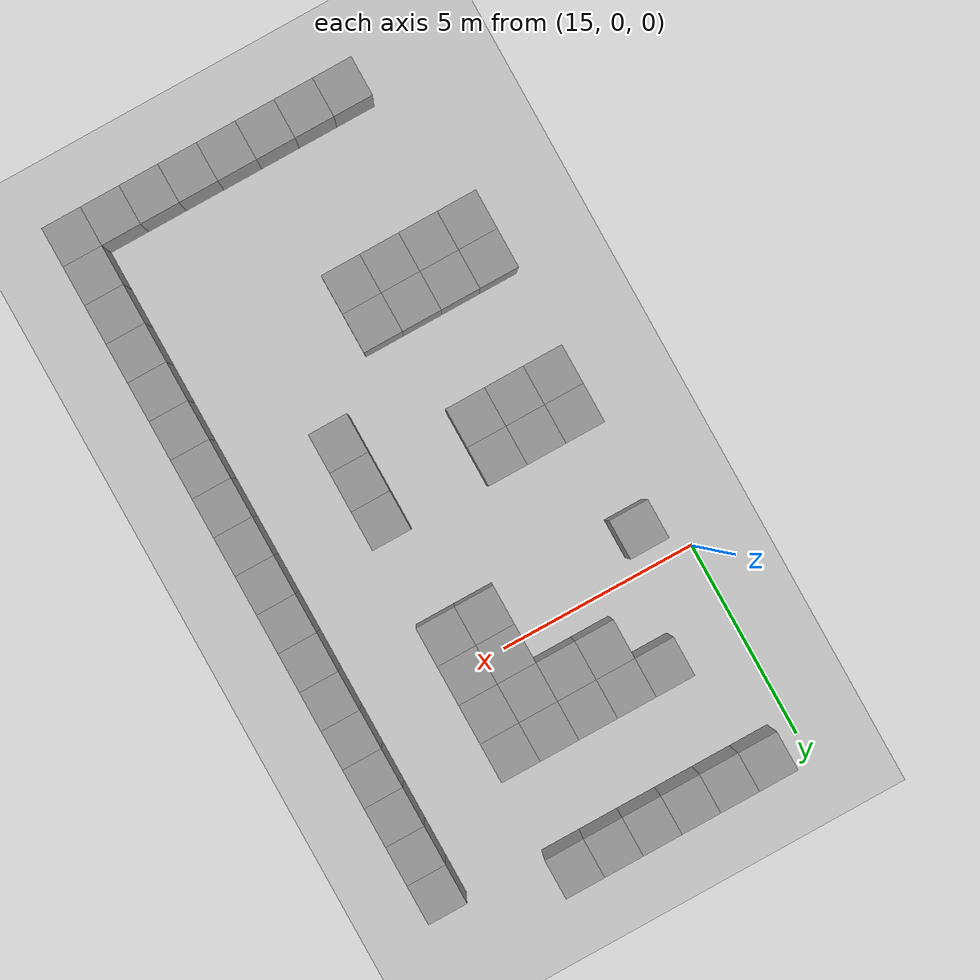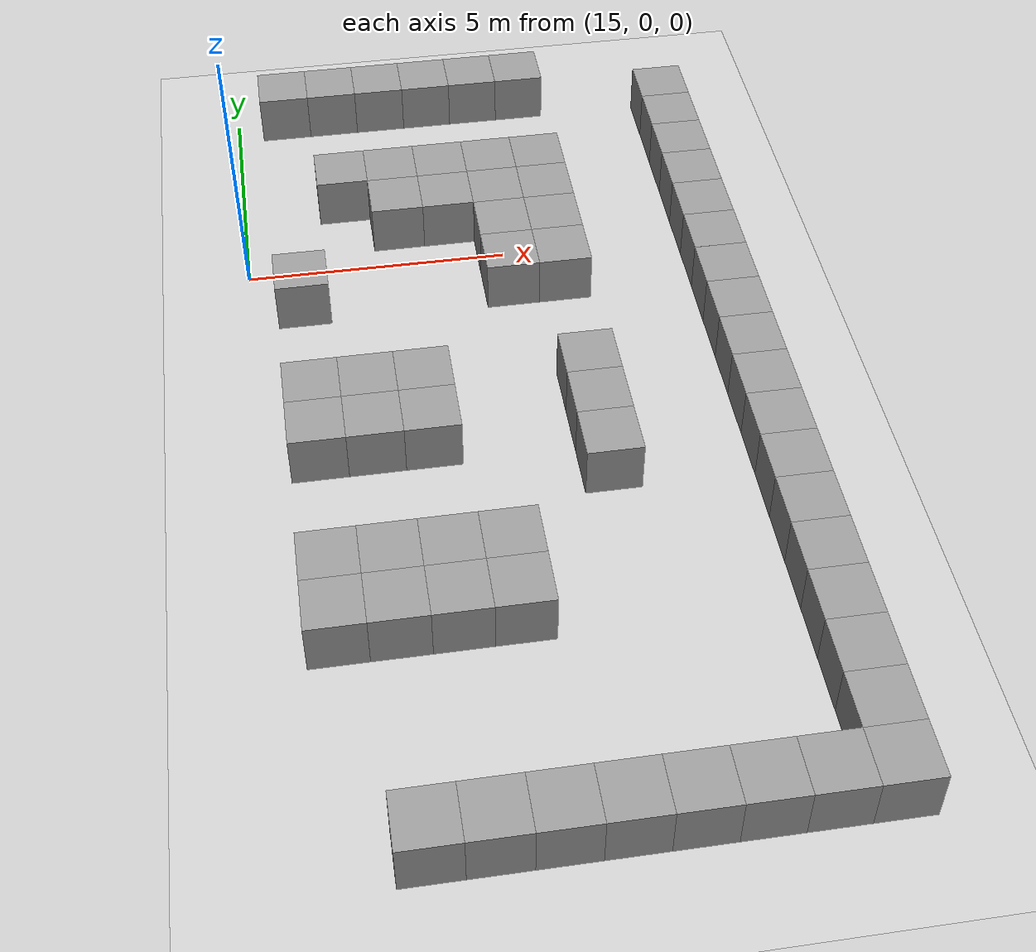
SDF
<sdf version="1.4">
 <world name="default">
  <model name="ground_plane">
   <static>1</static>
   <link name="link">
    <collision name="collision">
     <geometry><plane><normal>0 0 1</normal><size>100 100</size></plane></geometry>
     <surface><friction><ode><mu>100</mu><mu2>50</mu2></ode></friction></surface>
    </collision>
    <visual name="visual">
     <cast_shadows>0</cast_shadows>
     <geometry><plane><normal>0 0 1</normal><size>100 100</size></plane></geometry>
     <material>
      <script><uri>file://media/materials/scripts/gazebo.material</uri><name>Gazebo/Grey</name></script>
     </material>
    </visual>
    <velocity_decay><linear>0</linear><angular>0</angular></velocity_decay>
   </link>
  </model>
  <model name="unit_box_182">
   <pose>24.0018 -0.999661 0.5 0 -0 7.7e-05</pose>
   <static>1</static>
   <link name="link">
    <inertial>
     <mass>1</mass>
     <inertia><ixx>1</ixx><ixy>0</ixy><ixz>0</ixz><iyy>1</iyy><iyz>0</iyz><izz>1</izz></inertia>
    </inertial>
    <collision name="collision"><geometry><box><size>1 1 1</size></box></geometry></collision>
    <visual name="visual">
     <geometry><box><size>1 1 1</size></box></geometry>
     <material>
      <script><uri>file://media/materials/scripts/gazebo.material</uri><name>Gazebo/Grey</name></script>
     </material>
    </visual>
    <velocity_decay><linear>0</linear><angular>0</angular></velocity_decay>
   </link>
   <static>1</static>
  </model>
  <model name="unit_box_195">
   <pose>24.0001 4.00041 0.5 0 -0 5.9e-05</pose>
   <static>1</static>
   <link name="link">
    <inertial>
     <mass>1</mass>
     <inertia><ixx>1</ixx><ixy>0</ixy><ixz>0</ixz><iyy>1</iyy><iyz>0</iyz><izz>1</izz></inertia>
    </inertial>
    <collision name="collision"><geometry><box><size>1 1 1</size></box></geometry></collision>
    <visual name="visual">
     <geometry><box><size>1 1 1</size></box></geometry>
     <material>
      <script><uri>file://media/materials/scripts/gazebo.material</uri><name>Gazebo/Grey</name></script>
     </material>
    </visual>
    <velocity_decay><linear>0</linear><angular>0</angular></velocity_decay>
   </link>
   <static>1</static>
  </model>
  <model name="unit_box_196">
   <pose>24 3.00041 0.5 0 -0 5.5e-05</pose>
   <static>1</static>
   <link name="link">
    <inertial>
     <mass>1</mass>
     <inertia><ixx>1</ixx><ixy>0</ixy><ixz>0</ixz><iyy>1</iyy><iyz>0</iyz><izz>1</izz></inertia>
    </inertial>
    <collision name="collision"><geometry><box><size>1 1 1</size></box></geometry></collision>
    <visual name="visual">
     <geometry><box><size>1 1 1</size></box></geometry>
     <material>
      <script><uri>file://media/materials/scripts/gazebo.material</uri><name>Gazebo/Grey</name></script>
     </material>
    </visual>
    <velocity_decay><linear>0</linear><angular>0</angular></velocity_decay>
   </link>
   <static>1</static>
  </model>
  <model name="unit_box_197">
   <pose>23.9999 2.00038 0.5 0 -0 6.3e-05</pose>
   <static>1</static>
   <link name="link">
    <inertial>
     <mass>1</mass>
     <inertia><ixx>1</ixx><ixy>0</ixy><ixz>0</ixz><iyy>1</iyy><iyz>0</iyz><izz>1</izz></inertia>
    </inertial>
    <collision name="collision"><geometry><box><size>1 1 1</size></box></geometry></collision>
    <visual name="visual">
     <geometry><box><size>1 1 1</size></box></geometry>
     <material>
      <script><uri>file://media/materials/scripts/gazebo.material</uri><name>Gazebo/Grey</name></script>
     </material>
    </visual>
    <velocity_decay><linear>0</linear><angular>0</angular></velocity_decay>
   </link>
   <static>1</static>
  </model>
  <model name="unit_box_198">
   <pose>23.9999 1.00035 0.5 0 -0 7.1e-05</pose>
   <static>1</static>
   <link name="link">
    <inertial>
     <mass>1</mass>
     <inertia><ixx>1</ixx><ixy>0</ixy><ixz>0</ixz><iyy>1</iyy><iyz>0</iyz><izz>1</izz></inertia>
    </inertial>
    <collision name="collision"><geometry><box><size>1 1 1</size></box></geometry></collision>
    <visual name="visual">
     <geometry><box><size>1 1 1</size></box></geometry>
     <material>
      <script><uri>file://media/materials/scripts/gazebo.material</uri><name>Gazebo/Grey</name></script>
     </material>
    </visual>
    <velocity_decay><linear>0</linear><angular>0</angular></velocity_decay>
   </link>
   <static>1</static>
  </model>
  <model name="unit_box_199">
   <pose>23.9997 0.000344 0.5 0 -0 7.4e-05</pose>
   <static>1</static>
   <link name="link">
    <inertial>
     <mass>1</mass>
     <inertia><ixx>1</ixx><ixy>0</ixy><ixz>0</ixz><iyy>1</iyy><iyz>0</iyz><izz>1</izz></inertia>
    </inertial>
    <collision name="collision"><geometry><box><size>1 1 1</size></box></geometry></collision>
    <visual name="visual">
     <geometry><box><size>1 1 1</size></box></geometry>
     <material>
      <script><uri>file://media/materials/scripts/gazebo.material</uri><name>Gazebo/Grey</name></script>
     </material>
    </visual>
    <velocity_decay><linear>0</linear><angular>0</angular></velocity_decay>
   </link>
   <static>1</static>
  </model>
  <model name="unit_box_204">
   <pose>24 -1.99999 0.5 0 -0 1e-06</pose>
   <static>1</static>
   <link name="link">
    <inertial>
     <mass>1</mass>
     <inertia><ixx>1</ixx><ixy>0</ixy><ixz>0</ixz><iyy>1</iyy><iyz>0</iyz><izz>1</izz></inertia>
    </inertial>
    <collision name="collision"><geometry><box><size>1 1 1</size></box></geometry></collision>
    <visual name="visual">
     <geometry><box><size>1 1 1</size></box></geometry>
     <material>
      <script><uri>file://media/materials/scripts/gazebo.material</uri><name>Gazebo/Grey</name></script>
     </material>
    </visual>
    <velocity_decay><linear>0</linear><angular>0</angular></velocity_decay>
   </link>
   <static>1</static>
  </model>
  <model name="unit_box_205">
   <pose>24 -2.99999 0.5 0 -0 1e-06</pose>
   <static>1</static>
   <link name="link">
    <inertial>
     <mass>1</mass>
     <inertia><ixx>1</ixx><ixy>0</ixy><ixz>0</ixz><iyy>1</iyy><iyz>0</iyz><izz>1</izz></inertia>
    </inertial>
    <collision name="collision"><geometry><box><size>1 1 1</size></box></geometry></collision>
    <visual name="visual">
     <geometry><box><size>1 1 1</size></box></geometry>
     <material>
      <script><uri>file://media/materials/scripts/gazebo.material</uri><name>Gazebo/Grey</name></script>
     </material>
    </visual>
    <velocity_decay><linear>0</linear><angular>0</angular></velocity_decay>
   </link>
   <static>1</static>
  </model>
  <model name="unit_box_206">
   <pose>24 -3.99999 0.5 0 0 -1e-06</pose>
   <static>1</static>
   <link name="link">
    <inertial>
     <mass>1</mass>
     <inertia><ixx>1</ixx><ixy>0</ixy><ixz>0</ixz><iyy>1</iyy><iyz>0</iyz><izz>1</izz></inertia>
    </inertial>
    <collision name="collision"><geometry><box><size>1 1 1</size></box></geometry></collision>
    <visual name="visual">
     <geometry><box><size>1 1 1</size></box></geometry>
     <material>
      <script><uri>file://media/materials/scripts/gazebo.material</uri><name>Gazebo/Grey</name></script>
     </material>
    </visual>
    <velocity_decay><linear>0</linear><angular>0</angular></velocity_decay>
   </link>
   <static>1</static>
  </model>
  <model name="unit_box_207">
   <pose>24 -4.99999 0.5 0 0 -1e-06</pose>
   <static>1</static>
   <link name="link">
    <inertial>
     <mass>1</mass>
     <inertia><ixx>1</ixx><ixy>0</ixy><ixz>0</ixz><iyy>1</iyy><iyz>0</iyz><izz>1</izz></inertia>
    </inertial>
    <collision name="collision"><geometry><box><size>1 1 1</size></box></geometry></collision>
    <visual name="visual">
     <geometry><box><size>1 1 1</size></box></geometry>
     <material>
      <script><uri>file://media/materials/scripts/gazebo.material</uri><name>Gazebo/Grey</name></script>
     </material>
    </visual>
    <velocity_decay><linear>0</linear><angular>0</angular></velocity_decay>
   </link>
   <static>1</static>
  </model>
  <model name="unit_box_208">
   <pose>24 -6 0.5 0 0 -2e-06</pose>
   <static>1</static>
   <link name="link">
    <inertial>
     <mass>1</mass>
     <inertia><ixx>1</ixx><ixy>0</ixy><ixz>0</ixz><iyy>1</iyy><iyz>0</iyz><izz>1</izz></inertia>
    </inertial>
    <collision name="collision"><geometry><box><size>1 1 1</size></box></geometry></collision>
    <visual name="visual">
     <geometry><box><size>1 1 1</size></box></geometry>
     <material>
      <script><uri>file://media/materials/scripts/gazebo.material</uri><name>Gazebo/Grey</name></script>
     </material>
    </visual>
    <velocity_decay><linear>0</linear><angular>0</angular></velocity_decay>
   </link>
   <static>1</static>
  </model>
  <model name="unit_box_215">
   <pose>24 -7 0.5 0 0 -2e-06</pose>
   <static>1</static>
   <link name="link">
    <inertial>
     <mass>1</mass>
     <inertia><ixx>1</ixx><ixy>0</ixy><ixz>0</ixz><iyy>1</iyy><iyz>0</iyz><izz>1</izz></inertia>
    </inertial>
    <collision name="collision"><geometry><box><size>1 1 1</size></box></geometry></collision>
    <visual name="visual">
     <geometry><box><size>1 1 1</size></box></geometry>
     <material>
      <script><uri>file://media/materials/scripts/gazebo.material</uri><name>Gazebo/Grey</name></script>
     </material>
    </visual>
    <velocity_decay><linear>0</linear><angular>0</angular></velocity_decay>
   </link>
   <static>1</static>
  </model>
  <model name="unit_box_216">
   <pose>24 -8 0.5 0 0 -3e-06</pose>
   <static>1</static>
   <link name="link">
    <inertial>
     <mass>1</mass>
     <inertia><ixx>1</ixx><ixy>0</ixy><ixz>0</ixz><iyy>1</iyy><iyz>0</iyz><izz>1</izz></inertia>
    </inertial>
    <collision name="collision"><geometry><box><size>1 1 1</size></box></geometry></collision>
    <visual name="visual">
     <geometry><box><size>1 1 1</size></box></geometry>
     <material>
      <script><uri>file://media/materials/scripts/gazebo.material</uri><name>Gazebo/Grey</name></script>
     </material>
    </visual>
    <velocity_decay><linear>0</linear><angular>0</angular></velocity_decay>
   </link>
   <static>1</static>
  </model>
  <model name="unit_box_274">
   <pose>24 -9 0.5 0 0 -6e-06</pose>
   <static>1</static>
   <link name="link">
    <inertial>
     <mass>1</mass>
     <inertia><ixx>1</ixx><ixy>0</ixy><ixz>0</ixz><iyy>1</iyy><iyz>0</iyz><izz>1</izz></inertia>
    </inertial>
    <collision name="collision"><geometry><box><size>1 1 1</size></box></geometry></collision>
    <visual name="visual">
     <geometry><box><size>1 1 1</size></box></geometry>
     <material>
      <script><uri>file://media/materials/scripts/gazebo.material</uri><name>Gazebo/Grey</name></script>
     </material>
    </visual>
    <velocity_decay><linear>0</linear><angular>0</angular></velocity_decay>
   </link>
   <static>1</static>
  </model>
  <model name="unit_box_275">
   <pose>24 -10 0.5 0 0 -6e-06</pose>
   <static>1</static>
   <link name="link">
    <inertial>
     <mass>1</mass>
     <inertia><ixx>1</ixx><ixy>0</ixy><ixz>0</ixz><iyy>1</iyy><iyz>0</iyz><izz>1</izz></inertia>
    </inertial>
    <collision name="collision"><geometry><box><size>1 1 1</size></box></geometry></collision>
    <visual name="visual">
     <geometry><box><size>1 1 1</size></box></geometry>
     <material>
      <script><uri>file://media/materials/scripts/gazebo.material</uri><name>Gazebo/Grey</name></script>
     </material>
    </visual>
    <velocity_decay><linear>0</linear><angular>0</angular></velocity_decay>
   </link>
   <static>1</static>
  </model>
  <model name="unit_box_276">
   <pose>24 -11 0.5 0 0 -4e-06</pose>
   <static>1</static>
   <link name="link">
    <inertial>
     <mass>1</mass>
     <inertia><ixx>1</ixx><ixy>0</ixy><ixz>0</ixz><iyy>1</iyy><iyz>0</iyz><izz>1</izz></inertia>
    </inertial>
    <collision name="collision"><geometry><box><size>1 1 1</size></box></geometry></collision>
    <visual name="visual">
     <geometry><box><size>1 1 1</size></box></geometry>
     <material>
      <script><uri>file://media/materials/scripts/gazebo.material</uri><name>Gazebo/Grey</name></script>
     </material>
    </visual>
    <velocity_decay><linear>0</linear><angular>0</angular></velocity_decay>
   </link>
   <static>1</static>
  </model>
  <model name="unit_box_277">
   <pose>24 -12 0.5 0 0 -4e-06</pose>
   <static>1</static>
   <link name="link">
    <inertial>
     <mass>1</mass>
     <inertia><ixx>1</ixx><ixy>0</ixy><ixz>0</ixz><iyy>1</iyy><iyz>0</iyz><izz>1</izz></inertia>
    </inertial>
    <collision name="collision"><geometry><box><size>1 1 1</size></box></geometry></collision>
    <visual name="visual">
     <geometry><box><size>1 1 1</size></box></geometry>
     <material>
      <script><uri>file://media/materials/scripts/gazebo.material</uri><name>Gazebo/Grey</name></script>
     </material>
    </visual>
    <velocity_decay><linear>0</linear><angular>0</angular></velocity_decay>
   </link>
   <static>1</static>
  </model>
  <model name="unit_box_280">
   <pose>17 -13 0.5 -1e-06 1.61559e-27 -1.1e-05</pose>
   <static>1</static>
   <link name="link">
    <inertial>
     <mass>1</mass>
     <inertia><ixx>1</ixx><ixy>0</ixy><ixz>0</ixz><iyy>1</iyy><iyz>0</iyz><izz>1</izz></inertia>
    </inertial>
    <collision name="collision"><geometry><box><size>1 1 1</size></box></geometry></collision>
    <visual name="visual">
     <geometry><box><size>1 1 1</size></box></geometry>
     <material>
      <script><uri>file://media/materials/scripts/gazebo.material</uri><name>Gazebo/Grey</name></script>
     </material>
    </visual>
    <velocity_decay><linear>0</linear><angular>0</angular></velocity_decay>
   </link>
   <static>1</static>
  </model>
  <model name="unit_box_281">
   <pose>18 -13 0.5 0 0 -1.1e-05</pose>
   <static>1</static>
   <link name="link">
    <inertial>
     <mass>1</mass>
     <inertia><ixx>1</ixx><ixy>0</ixy><ixz>0</ixz><iyy>1</iyy><iyz>0</iyz><izz>1</izz></inertia>
    </inertial>
    <collision name="collision"><geometry><box><size>1 1 1</size></box></geometry></collision>
    <visual name="visual">
     <geometry><box><size>1 1 1</size></box></geometry>
     <material>
      <script><uri>file://media/materials/scripts/gazebo.material</uri><name>Gazebo/Grey</name></script>
     </material>
    </visual>
    <velocity_decay><linear>0</linear><angular>0</angular></velocity_decay>
   </link>
   <static>1</static>
  </model>
  <model name="unit_box_282">
   <pose>19 -13 0.5 0 0 -9e-06</pose>
   <static>1</static>
   <link name="link">
    <inertial>
     <mass>1</mass>
     <inertia><ixx>1</ixx><ixy>0</ixy><ixz>0</ixz><iyy>1</iyy><iyz>0</iyz><izz>1</izz></inertia>
    </inertial>
    <collision name="collision"><geometry><box><size>1 1 1</size></box></geometry></collision>
    <visual name="visual">
     <geometry><box><size>1 1 1</size></box></geometry>
     <material>
      <script><uri>file://media/materials/scripts/gazebo.material</uri><name>Gazebo/Grey</name></script>
     </material>
    </visual>
    <velocity_decay><linear>0</linear><angular>0</angular></velocity_decay>
   </link>
   <static>1</static>
  </model>
  <model name="unit_box_283">
   <pose>20 -13 0.5 0 0 -9e-06</pose>
   <static>1</static>
   <link name="link">
    <inertial>
     <mass>1</mass>
     <inertia><ixx>1</ixx><ixy>0</ixy><ixz>0</ixz><iyy>1</iyy><iyz>0</iyz><izz>1</izz></inertia>
    </inertial>
    <collision name="collision"><geometry><box><size>1 1 1</size></box></geometry></collision>
    <visual name="visual">
     <geometry><box><size>1 1 1</size></box></geometry>
     <material>
      <script><uri>file://media/materials/scripts/gazebo.material</uri><name>Gazebo/Grey</name></script>
     </material>
    </visual>
    <velocity_decay><linear>0</linear><angular>0</angular></velocity_decay>
   </link>
   <static>1</static>
  </model>
  <model name="unit_box_284">
   <pose>21 -13 0.5 0 0 -6e-06</pose>
   <static>1</static>
   <link name="link">
    <inertial>
     <mass>1</mass>
     <inertia><ixx>1</ixx><ixy>0</ixy><ixz>0</ixz><iyy>1</iyy><iyz>0</iyz><izz>1</izz></inertia>
    </inertial>
    <collision name="collision"><geometry><box><size>1 1 1</size></box></geometry></collision>
    <visual name="visual">
     <geometry><box><size>1 1 1</size></box></geometry>
     <material>
      <script><uri>file://media/materials/scripts/gazebo.material</uri><name>Gazebo/Grey</name></script>
     </material>
    </visual>
    <velocity_decay><linear>0</linear><angular>0</angular></velocity_decay>
   </link>
   <static>1</static>
  </model>
  <model name="unit_box_285">
   <pose>22 -13 0.5 1e-06 -0 -6e-06</pose>
   <static>1</static>
   <link name="link">
    <inertial>
     <mass>1</mass>
     <inertia><ixx>1</ixx><ixy>0</ixy><ixz>0</ixz><iyy>1</iyy><iyz>0</iyz><izz>1</izz></inertia>
    </inertial>
    <collision name="collision"><geometry><box><size>1 1 1</size></box></geometry></collision>
    <visual name="visual">
     <geometry><box><size>1 1 1</size></box></geometry>
     <material>
      <script><uri>file://media/materials/scripts/gazebo.material</uri><name>Gazebo/Grey</name></script>
     </material>
    </visual>
    <velocity_decay><linear>0</linear><angular>0</angular></velocity_decay>
   </link>
   <static>1</static>
  </model>
  <model name="unit_box_286">
   <pose>23 -13 0.5 0 0 -6e-06</pose>
   <static>1</static>
   <link name="link">
    <inertial>
     <mass>1</mass>
     <inertia><ixx>1</ixx><ixy>0</ixy><ixz>0</ixz><iyy>1</iyy><iyz>0</iyz><izz>1</izz></inertia>
    </inertial>
    <collision name="collision"><geometry><box><size>1 1 1</size></box></geometry></collision>
    <visual name="visual">
     <geometry><box><size>1 1 1</size></box></geometry>
     <material>
      <script><uri>file://media/materials/scripts/gazebo.material</uri><name>Gazebo/Grey</name></script>
     </material>
    </visual>
    <velocity_decay><linear>0</linear><angular>0</angular></velocity_decay>
   </link>
   <static>1</static>
  </model>
  <model name="unit_box_287">
   <pose>24 -13 0.5 0 0 -5e-06</pose>
   <static>1</static>
   <link name="link">
    <inertial>
     <mass>1</mass>
     <inertia><ixx>1</ixx><ixy>0</ixy><ixz>0</ixz><iyy>1</iyy><iyz>0</iyz><izz>1</izz></inertia>
    </inertial>
    <collision name="collision"><geometry><box><size>1 1 1</size></box></geometry></collision>
    <visual name="visual">
     <geometry><box><size>1 1 1</size></box></geometry>
     <material>
      <script><uri>file://media/materials/scripts/gazebo.material</uri><name>Gazebo/Grey</name></script>
     </material>
    </visual>
    <velocity_decay><linear>0</linear><angular>0</angular></velocity_decay>
   </link>
   <static>1</static>
  </model>
  <model name="unit_box_184_0">
   <pose>16 -9.00001 0.5 0 -0 2e-06</pose>
   <link name="link">
    <inertial>
     <mass>1</mass>
     <inertia><ixx>1</ixx><ixy>0</ixy><ixz>0</ixz><iyy>1</iyy><iyz>0</iyz><izz>1</izz></inertia>
    </inertial>
    <collision name="collision"><geometry><box><size>1 1 1</size></box></geometry></collision>
    <visual name="visual">
     <geometry><box><size>1 1 1</size></box></geometry>
     <material>
      <script><uri>file://media/materials/scripts/gazebo.material</uri><name>Gazebo/Grey</name></script>
     </material>
    </visual>
    <velocity_decay><linear>0</linear><angular>0</angular></velocity_decay>
   </link>
   <static>1</static>
  </model>
  <model name="unit_box_185_0">
   <pose>17 -9.00001 0.5 0 -0 1e-06</pose>
   <link name="link">
    <inertial>
     <mass>1</mass>
     <inertia><ixx>1</ixx><ixy>0</ixy><ixz>0</ixz><iyy>1</iyy><iyz>0</iyz><izz>1</izz></inertia>
    </inertial>
    <collision name="collision"><geometry><box><size>1 1 1</size></box></geometry></collision>
    <visual name="visual">
     <geometry><box><size>1 1 1</size></box></geometry>
     <material>
      <script><uri>file://media/materials/scripts/gazebo.material</uri><name>Gazebo/Grey</name></script>
     </material>
    </visual>
    <velocity_decay><linear>0</linear><angular>0</angular></velocity_decay>
   </link>
   <static>1</static>
  </model>
  <model name="unit_box_186_0">
   <pose>18 -9.00001 0.5 0 -0 0</pose>
   <link name="link">
    <inertial>
     <mass>1</mass>
     <inertia><ixx>1</ixx><ixy>0</ixy><ixz>0</ixz><iyy>1</iyy><iyz>0</iyz><izz>1</izz></inertia>
    </inertial>
    <collision name="collision"><geometry><box><size>1 1 1</size></box></geometry></collision>
    <visual name="visual">
     <geometry><box><size>1 1 1</size></box></geometry>
     <material>
      <script><uri>file://media/materials/scripts/gazebo.material</uri><name>Gazebo/Grey</name></script>
     </material>
    </visual>
    <velocity_decay><linear>0</linear><angular>0</angular></velocity_decay>
   </link>
   <static>1</static>
  </model>
  <model name="unit_box_187_0">
   <pose>19 -9.00001 0.5 0 -0 1e-06</pose>
   <link name="link">
    <inertial>
     <mass>1</mass>
     <inertia><ixx>1</ixx><ixy>0</ixy><ixz>0</ixz><iyy>1</iyy><iyz>0</iyz><izz>1</izz></inertia>
    </inertial>
    <collision name="collision"><geometry><box><size>1 1 1</size></box></geometry></collision>
    <visual name="visual">
     <geometry><box><size>1 1 1</size></box></geometry>
     <material>
      <script><uri>file://media/materials/scripts/gazebo.material</uri><name>Gazebo/Grey</name></script>
     </material>
    </visual>
    <velocity_decay><linear>0</linear><angular>0</angular></velocity_decay>
   </link>
   <static>1</static>
  </model>
  <model name="unit_box_192_0">
   <pose>21 -6 0.5 0 0 -4e-06</pose>
   <link name="link">
    <inertial>
     <mass>1</mass>
     <inertia><ixx>1</ixx><ixy>0</ixy><ixz>0</ixz><iyy>1</iyy><iyz>0</iyz><izz>1</izz></inertia>
    </inertial>
    <collision name="collision"><geometry><box><size>1 1 1</size></box></geometry></collision>
    <visual name="visual">
     <geometry><box><size>1 1 1</size></box></geometry>
     <material>
      <script><uri>file://media/materials/scripts/gazebo.material</uri><name>Gazebo/Grey</name></script>
     </material>
    </visual>
    <velocity_decay><linear>0</linear><angular>0</angular></velocity_decay>
   </link>
   <static>1</static>
  </model>
  <model name="unit_box_193_0">
   <pose>21 -5 0.5 0 0 -4e-06</pose>
   <link name="link">
    <inertial>
     <mass>1</mass>
     <inertia><ixx>1</ixx><ixy>0</ixy><ixz>0</ixz><iyy>1</iyy><iyz>0</iyz><izz>1</izz></inertia>
    </inertial>
    <collision name="collision"><geometry><box><size>1 1 1</size></box></geometry></collision>
    <visual name="visual">
     <geometry><box><size>1 1 1</size></box></geometry>
     <material>
      <script><uri>file://media/materials/scripts/gazebo.material</uri><name>Gazebo/Grey</name></script>
     </material>
    </visual>
    <velocity_decay><linear>0</linear><angular>0</angular></velocity_decay>
   </link>
   <static>1</static>
  </model>
  <model name="unit_box_194_0">
   <pose>21 -4 0.5 0 0 -4e-06</pose>
   <link name="link">
    <inertial>
     <mass>1</mass>
     <inertia><ixx>1</ixx><ixy>0</ixy><ixz>0</ixz><iyy>1</iyy><iyz>0</iyz><izz>1</izz></inertia>
    </inertial>
    <collision name="collision"><geometry><box><size>1 1 1</size></box></geometry></collision>
    <visual name="visual">
     <geometry><box><size>1 1 1</size></box></geometry>
     <material>
      <script><uri>file://media/materials/scripts/gazebo.material</uri><name>Gazebo/Grey</name></script>
     </material>
    </visual>
    <velocity_decay><linear>0</linear><angular>0</angular></velocity_decay>
   </link>
   <static>1</static>
  </model>
  <model name="unit_box_195_0">
   <pose>16 -3.99999 0.5 0 0 -6e-06</pose>
   <link name="link">
    <inertial>
     <mass>1</mass>
     <inertia><ixx>1</ixx><ixy>0</ixy><ixz>0</ixz><iyy>1</iyy><iyz>0</iyz><izz>1</izz></inertia>
    </inertial>
    <collision name="collision"><geometry><box><size>1 1 1</size></box></geometry></collision>
    <visual name="visual">
     <geometry><box><size>1 1 1</size></box></geometry>
     <material>
      <script><uri>file://media/materials/scripts/gazebo.material</uri><name>Gazebo/Grey</name></script>
     </material>
    </visual>
    <velocity_decay><linear>0</linear><angular>0</angular></velocity_decay>
   </link>
   <static>1</static>
  </model>
  <model name="unit_box_196_0">
   <pose>16 -5 0.5 0 0 -4e-06</pose>
   <link name="link">
    <inertial>
     <mass>1</mass>
     <inertia><ixx>1</ixx><ixy>0</ixy><ixz>0</ixz><iyy>1</iyy><iyz>0</iyz><izz>1</izz></inertia>
    </inertial>
    <collision name="collision"><geometry><box><size>1 1 1</size></box></geometry></collision>
    <visual name="visual">
     <geometry><box><size>1 1 1</size></box></geometry>
     <material>
      <script><uri>file://media/materials/scripts/gazebo.material</uri><name>Gazebo/Grey</name></script>
     </material>
    </visual>
    <velocity_decay><linear>0</linear><angular>0</angular></velocity_decay>
   </link>
   <static>1</static>
  </model>
  <model name="unit_box_197_0">
   <pose>17 -5 0.5 0 0 -4e-06</pose>
   <link name="link">
    <inertial>
     <mass>1</mass>
     <inertia><ixx>1</ixx><ixy>0</ixy><ixz>0</ixz><iyy>1</iyy><iyz>0</iyz><izz>1</izz></inertia>
    </inertial>
    <collision name="collision"><geometry><box><size>1 1 1</size></box></geometry></collision>
    <visual name="visual">
     <geometry><box><size>1 1 1</size></box></geometry>
     <material>
      <script><uri>file://media/materials/scripts/gazebo.material</uri><name>Gazebo/Grey</name></script>
     </material>
    </visual>
    <velocity_decay><linear>0</linear><angular>0</angular></velocity_decay>
   </link>
   <static>1</static>
  </model>
  <model name="unit_box_198_0">
   <pose>18 -5 0.5 0 0 -6e-06</pose>
   <link name="link">
    <inertial>
     <mass>1</mass>
     <inertia><ixx>1</ixx><ixy>0</ixy><ixz>0</ixz><iyy>1</iyy><iyz>0</iyz><izz>1</izz></inertia>
    </inertial>
    <collision name="collision"><geometry><box><size>1 1 1</size></box></geometry></collision>
    <visual name="visual">
     <geometry><box><size>1 1 1</size></box></geometry>
     <material>
      <script><uri>file://media/materials/scripts/gazebo.material</uri><name>Gazebo/Grey</name></script>
     </material>
    </visual>
    <velocity_decay><linear>0</linear><angular>0</angular></velocity_decay>
   </link>
   <static>1</static>
  </model>
  <model name="unit_box_199_0">
   <pose>17 -4 0.5 0 0 -6e-06</pose>
   <link name="link">
    <inertial>
     <mass>1</mass>
     <inertia><ixx>1</ixx><ixy>0</ixy><ixz>0</ixz><iyy>1</iyy><iyz>0</iyz><izz>1</izz></inertia>
    </inertial>
    <collision name="collision"><geometry><box><size>1 1 1</size></box></geometry></collision>
    <visual name="visual">
     <geometry><box><size>1 1 1</size></box></geometry>
     <material>
      <script><uri>file://media/materials/scripts/gazebo.material</uri><name>Gazebo/Grey</name></script>
     </material>
    </visual>
    <velocity_decay><linear>0</linear><angular>0</angular></velocity_decay>
   </link>
   <static>1</static>
  </model>
  <model name="unit_box_200_0">
   <pose>18 -4 0.5 0 0 -6e-06</pose>
   <link name="link">
    <inertial>
     <mass>1</mass>
     <inertia><ixx>1</ixx><ixy>0</ixy><ixz>0</ixz><iyy>1</iyy><iyz>0</iyz><izz>1</izz></inertia>
    </inertial>
    <collision name="collision"><geometry><box><size>1 1 1</size></box></geometry></collision>
    <visual name="visual">
     <geometry><box><size>1 1 1</size></box></geometry>
     <material>
      <script><uri>file://media/materials/scripts/gazebo.material</uri><name>Gazebo/Grey</name></script>
     </material>
    </visual>
    <velocity_decay><linear>0</linear><angular>0</angular></velocity_decay>
   </link>
   <static>1</static>
  </model>
  <model name="unit_box_264_0">
   <pose>17 2.00001 0.5 0 0 -1e-06</pose>
   <link name="link">
    <inertial>
     <mass>1</mass>
     <inertia><ixx>1</ixx><ixy>0</ixy><ixz>0</ixz><iyy>1</iyy><iyz>0</iyz><izz>1</izz></inertia>
    </inertial>
    <collision name="collision"><geometry><box><size>1 1 1</size></box></geometry></collision>
    <visual name="visual">
     <geometry><box><size>1 1 1</size></box></geometry>
     <material>
      <script><uri>file://media/materials/scripts/gazebo.material</uri><name>Gazebo/Grey</name></script>
     </material>
    </visual>
    <velocity_decay><linear>0</linear><angular>0</angular></velocity_decay>
   </link>
   <static>1</static>
  </model>
  <model name="unit_box_265_0">
   <pose>18 2 0.5 0 0 -2e-06</pose>
   <link name="link">
    <inertial>
     <mass>1</mass>
     <inertia><ixx>1</ixx><ixy>0</ixy><ixz>0</ixz><iyy>1</iyy><iyz>0</iyz><izz>1</izz></inertia>
    </inertial>
    <collision name="collision"><geometry><box><size>1 1 1</size></box></geometry></collision>
    <visual name="visual">
     <geometry><box><size>1 1 1</size></box></geometry>
     <material>
      <script><uri>file://media/materials/scripts/gazebo.material</uri><name>Gazebo/Grey</name></script>
     </material>
    </visual>
    <velocity_decay><linear>0</linear><angular>0</angular></velocity_decay>
   </link>
   <static>1</static>
  </model>
  <model name="unit_box_266_0">
   <pose>19 2.00001 0.5 0 0 -2e-06</pose>
   <link name="link">
    <inertial>
     <mass>1</mass>
     <inertia><ixx>1</ixx><ixy>0</ixy><ixz>0</ixz><iyy>1</iyy><iyz>0</iyz><izz>1</izz></inertia>
    </inertial>
    <collision name="collision"><geometry><box><size>1 1 1</size></box></geometry></collision>
    <visual name="visual">
     <geometry><box><size>1 1 1</size></box></geometry>
     <material>
      <script><uri>file://media/materials/scripts/gazebo.material</uri><name>Gazebo/Grey</name></script>
     </material>
    </visual>
    <velocity_decay><linear>0</linear><angular>0</angular></velocity_decay>
   </link>
   <static>1</static>
  </model>
  <model name="unit_box_267_0">
   <pose>20 2.00001 0.5 0 0 -2e-06</pose>
   <link name="link">
    <inertial>
     <mass>1</mass>
     <inertia><ixx>1</ixx><ixy>0</ixy><ixz>0</ixz><iyy>1</iyy><iyz>0</iyz><izz>1</izz></inertia>
    </inertial>
    <collision name="collision"><geometry><box><size>1 1 1</size></box></geometry></collision>
    <visual name="visual">
     <geometry><box><size>1 1 1</size></box></geometry>
     <material>
      <script><uri>file://media/materials/scripts/gazebo.material</uri><name>Gazebo/Grey</name></script>
     </material>
    </visual>
    <velocity_decay><linear>0</linear><angular>0</angular></velocity_decay>
   </link>
   <static>1</static>
  </model>
  <model name="unit_box_268_0">
   <pose>21 2.00001 0.5 0 -0 0</pose>
   <link name="link">
    <inertial>
     <mass>1</mass>
     <inertia><ixx>1</ixx><ixy>0</ixy><ixz>0</ixz><iyy>1</iyy><iyz>0</iyz><izz>1</izz></inertia>
    </inertial>
    <collision name="collision"><geometry><box><size>1 1 1</size></box></geometry></collision>
    <visual name="visual">
     <geometry><box><size>1 1 1</size></box></geometry>
     <material>
      <script><uri>file://media/materials/scripts/gazebo.material</uri><name>Gazebo/Grey</name></script>
     </material>
    </visual>
    <velocity_decay><linear>0</linear><angular>0</angular></velocity_decay>
   </link>
   <static>1</static>
  </model>
  <model name="unit_box_269_0">
   <pose>21 1 0.5 0 -0 3e-06</pose>
   <link name="link">
    <inertial>
     <mass>1</mass>
     <inertia><ixx>1</ixx><ixy>0</ixy><ixz>0</ixz><iyy>1</iyy><iyz>0</iyz><izz>1</izz></inertia>
    </inertial>
    <collision name="collision"><geometry><box><size>1 1 1</size></box></geometry></collision>
    <visual name="visual">
     <geometry><box><size>1 1 1</size></box></geometry>
     <material>
      <script><uri>file://media/materials/scripts/gazebo.material</uri><name>Gazebo/Grey</name></script>
     </material>
    </visual>
    <velocity_decay><linear>0</linear><angular>0</angular></velocity_decay>
   </link>
   <static>1</static>
  </model>
  <model name="unit_box_270_0">
   <pose>21 0 0.5 0 0 -3e-06</pose>
   <link name="link">
    <inertial>
     <mass>1</mass>
     <inertia><ixx>1</ixx><ixy>0</ixy><ixz>0</ixz><iyy>1</iyy><iyz>0</iyz><izz>1</izz></inertia>
    </inertial>
    <collision name="collision"><geometry><box><size>1 1 1</size></box></geometry></collision>
    <visual name="visual">
     <geometry><box><size>1 1 1</size></box></geometry>
     <material>
      <script><uri>file://media/materials/scripts/gazebo.material</uri><name>Gazebo/Grey</name></script>
     </material>
    </visual>
    <velocity_decay><linear>0</linear><angular>0</angular></velocity_decay>
   </link>
   <static>1</static>
  </model>
  <model name="unit_box_271_0">
   <pose>21 -1 0.5 0 0 -4e-06</pose>
   <link name="link">
    <inertial>
     <mass>1</mass>
     <inertia><ixx>1</ixx><ixy>0</ixy><ixz>0</ixz><iyy>1</iyy><iyz>0</iyz><izz>1</izz></inertia>
    </inertial>
    <collision name="collision"><geometry><box><size>1 1 1</size></box></geometry></collision>
    <visual name="visual">
     <geometry><box><size>1 1 1</size></box></geometry>
     <material>
      <script><uri>file://media/materials/scripts/gazebo.material</uri><name>Gazebo/Grey</name></script>
     </material>
    </visual>
    <velocity_decay><linear>0</linear><angular>0</angular></velocity_decay>
   </link>
   <static>1</static>
  </model>
  <model name="unit_box_272_0">
   <pose>16 -1.00001 0.5 0 0 -2e-06</pose>
   <link name="link">
    <inertial>
     <mass>1</mass>
     <inertia><ixx>1</ixx><ixy>0</ixy><ixz>0</ixz><iyy>1</iyy><iyz>0</iyz><izz>1</izz></inertia>
    </inertial>
    <collision name="collision"><geometry><box><size>1 1 1</size></box></geometry></collision>
    <visual name="visual">
     <geometry><box><size>1 1 1</size></box></geometry>
     <material>
      <script><uri>file://media/materials/scripts/gazebo.material</uri><name>Gazebo/Grey</name></script>
     </material>
    </visual>
    <velocity_decay><linear>0</linear><angular>0</angular></velocity_decay>
   </link>
   <static>1</static>
  </model>
  <model name="unit_box_276_0">
   <pose>18 0.999985 0.5 0 0 -2e-06</pose>
   <link name="link">
    <inertial>
     <mass>1</mass>
     <inertia><ixx>1</ixx><ixy>0</ixy><ixz>0</ixz><iyy>1</iyy><iyz>0</iyz><izz>1</izz></inertia>
    </inertial>
    <collision name="collision"><geometry><box><size>1 1 1</size></box></geometry></collision>
    <visual name="visual">
     <geometry><box><size>1 1 1</size></box></geometry>
     <material>
      <script><uri>file://media/materials/scripts/gazebo.material</uri><name>Gazebo/Grey</name></script>
     </material>
    </visual>
    <velocity_decay><linear>0</linear><angular>0</angular></velocity_decay>
   </link>
   <static>1</static>
  </model>
  <model name="unit_box_277_0">
   <pose>19 0.999996 0.5 0 0 -2e-06</pose>
   <link name="link">
    <inertial>
     <mass>1</mass>
     <inertia><ixx>1</ixx><ixy>0</ixy><ixz>0</ixz><iyy>1</iyy><iyz>0</iyz><izz>1</izz></inertia>
    </inertial>
    <collision name="collision"><geometry><box><size>1 1 1</size></box></geometry></collision>
    <visual name="visual">
     <geometry><box><size>1 1 1</size></box></geometry>
     <material>
      <script><uri>file://media/materials/scripts/gazebo.material</uri><name>Gazebo/Grey</name></script>
     </material>
    </visual>
    <velocity_decay><linear>0</linear><angular>0</angular></velocity_decay>
   </link>
   <static>1</static>
  </model>
  <model name="unit_box_278_0">
   <pose>20 1 0.5 0 0 -3e-06</pose>
   <link name="link">
    <inertial>
     <mass>1</mass>
     <inertia><ixx>1</ixx><ixy>0</ixy><ixz>0</ixz><iyy>1</iyy><iyz>0</iyz><izz>1</izz></inertia>
    </inertial>
    <collision name="collision"><geometry><box><size>1 1 1</size></box></geometry></collision>
    <visual name="visual">
     <geometry><box><size>1 1 1</size></box></geometry>
     <material>
      <script><uri>file://media/materials/scripts/gazebo.material</uri><name>Gazebo/Grey</name></script>
     </material>
    </visual>
    <velocity_decay><linear>0</linear><angular>0</angular></velocity_decay>
   </link>
   <static>1</static>
  </model>
  <model name="unit_box_279_0">
   <pose>20 -1e-06 0.5 0 0 -3e-06</pose>
   <link name="link">
    <inertial>
     <mass>1</mass>
     <inertia><ixx>1</ixx><ixy>0</ixy><ixz>0</ixz><iyy>1</iyy><iyz>0</iyz><izz>1</izz></inertia>
    </inertial>
    <collision name="collision"><geometry><box><size>1 1 1</size></box></geometry></collision>
    <visual name="visual">
     <geometry><box><size>1 1 1</size></box></geometry>
     <material>
      <script><uri>file://media/materials/scripts/gazebo.material</uri><name>Gazebo/Grey</name></script>
     </material>
    </visual>
    <velocity_decay><linear>0</linear><angular>0</angular></velocity_decay>
   </link>
   <static>1</static>
  </model>
  <model name="unit_box_280_0">
   <pose>20 -1 0.5 0 0 -3e-06</pose>
   <link name="link">
    <inertial>
     <mass>1</mass>
     <inertia><ixx>1</ixx><ixy>0</ixy><ixz>0</ixz><iyy>1</iyy><iyz>0</iyz><izz>1</izz></inertia>
    </inertial>
    <collision name="collision"><geometry><box><size>1 1 1</size></box></geometry></collision>
    <visual name="visual">
     <geometry><box><size>1 1 1</size></box></geometry>
     <material>
      <script><uri>file://media/materials/scripts/gazebo.material</uri><name>Gazebo/Grey</name></script>
     </material>
    </visual>
    <velocity_decay><linear>0</linear><angular>0</angular></velocity_decay>
   </link>
   <static>1</static>
  </model>
  <model name="unit_box_283_0">
   <pose>16 -8.00001 0.5 0 -0 3e-06</pose>
   <link name="link">
    <inertial>
     <mass>1</mass>
     <inertia><ixx>1</ixx><ixy>0</ixy><ixz>0</ixz><iyy>1</iyy><iyz>0</iyz><izz>1</izz></inertia>
    </inertial>
    <collision name="collision"><geometry><box><size>1 1 1</size></box></geometry></collision>
    <visual name="visual">
     <geometry><box><size>1 1 1</size></box></geometry>
     <material>
      <script><uri>file://media/materials/scripts/gazebo.material</uri><name>Gazebo/Grey</name></script>
     </material>
    </visual>
    <velocity_decay><linear>0</linear><angular>0</angular></velocity_decay>
   </link>
   <static>1</static>
  </model>
  <model name="unit_box_284_0">
   <pose>17 -8 0.5 0 -0 3e-06</pose>
   <link name="link">
    <inertial>
     <mass>1</mass>
     <inertia><ixx>1</ixx><ixy>0</ixy><ixz>0</ixz><iyy>1</iyy><iyz>0</iyz><izz>1</izz></inertia>
    </inertial>
    <collision name="collision"><geometry><box><size>1 1 1</size></box></geometry></collision>
    <visual name="visual">
     <geometry><box><size>1 1 1</size></box></geometry>
     <material>
      <script><uri>file://media/materials/scripts/gazebo.material</uri><name>Gazebo/Grey</name></script>
     </material>
    </visual>
    <velocity_decay><linear>0</linear><angular>0</angular></velocity_decay>
   </link>
   <static>1</static>
  </model>
  <model name="unit_box_285_0">
   <pose>18 -8 0.5 0 -0 3e-06</pose>
   <link name="link">
    <inertial>
     <mass>1</mass>
     <inertia><ixx>1</ixx><ixy>0</ixy><ixz>0</ixz><iyy>1</iyy><iyz>0</iyz><izz>1</izz></inertia>
    </inertial>
    <collision name="collision"><geometry><box><size>1 1 1</size></box></geometry></collision>
    <visual name="visual">
     <geometry><box><size>1 1 1</size></box></geometry>
     <material>
      <script><uri>file://media/materials/scripts/gazebo.material</uri><name>Gazebo/Grey</name></script>
     </material>
    </visual>
    <velocity_decay><linear>0</linear><angular>0</angular></velocity_decay>
   </link>
   <static>1</static>
  </model>
  <model name="unit_box_287_0">
   <pose>19 -8 0.5 0 0 -6e-06</pose>
   <link name="link">
    <inertial>
     <mass>1</mass>
     <inertia><ixx>1</ixx><ixy>0</ixy><ixz>0</ixz><iyy>1</iyy><iyz>0</iyz><izz>1</izz></inertia>
    </inertial>
    <collision name="collision"><geometry><box><size>1 1 1</size></box></geometry></collision>
    <visual name="visual">
     <geometry><box><size>1 1 1</size></box></geometry>
     <material>
      <script><uri>file://media/materials/scripts/gazebo.material</uri><name>Gazebo/Grey</name></script>
     </material>
    </visual>
    <velocity_decay><linear>0</linear><angular>0</angular></velocity_decay>
   </link>
   <static>1</static>
  </model>
  <model name="unit_box_293">
   <pose>16 4.99999 0.5 0 0 -4e-06</pose>
   <link name="link">
    <inertial>
     <mass>1</mass>
     <inertia><ixx>1</ixx><ixy>0</ixy><ixz>0</ixz><iyy>1</iyy><iyz>0</iyz><izz>1</izz></inertia>
    </inertial>
    <collision name="collision"><geometry><box><size>1 1 1</size></box></geometry></collision>
    <visual name="visual">
     <geometry><box><size>1 1 1</size></box></geometry>
     <material>
      <script><uri>file://media/materials/scripts/gazebo.material</uri><name>Gazebo/Grey</name></script>
     </material>
    </visual>
    <velocity_decay><linear>0</linear><angular>0</angular></velocity_decay>
   </link>
   <static>1</static>
  </model>
  <model name="unit_box_294">
   <pose>17 5 0.5 0 0 -5e-06</pose>
   <link name="link">
    <inertial>
     <mass>1</mass>
     <inertia><ixx>1</ixx><ixy>0</ixy><ixz>0</ixz><iyy>1</iyy><iyz>0</iyz><izz>1</izz></inertia>
    </inertial>
    <collision name="collision"><geometry><box><size>1 1 1</size></box></geometry></collision>
    <visual name="visual">
     <geometry><box><size>1 1 1</size></box></geometry>
     <material>
      <script><uri>file://media/materials/scripts/gazebo.material</uri><name>Gazebo/Grey</name></script>
     </material>
    </visual>
    <velocity_decay><linear>0</linear><angular>0</angular></velocity_decay>
   </link>
   <static>1</static>
  </model>
  <model name="unit_box_295">
   <pose>18 4.99999 0.5 0 0 -5e-06</pose>
   <link name="link">
    <inertial>
     <mass>1</mass>
     <inertia><ixx>1</ixx><ixy>0</ixy><ixz>0</ixz><iyy>1</iyy><iyz>0</iyz><izz>1</izz></inertia>
    </inertial>
    <collision name="collision"><geometry><box><size>1 1 1</size></box></geometry></collision>
    <visual name="visual">
     <geometry><box><size>1 1 1</size></box></geometry>
     <material>
      <script><uri>file://media/materials/scripts/gazebo.material</uri><name>Gazebo/Grey</name></script>
     </material>
    </visual>
    <velocity_decay><linear>0</linear><angular>0</angular></velocity_decay>
   </link>
   <static>1</static>
  </model>
  <model name="unit_box_296">
   <pose>19 5 0.5 0 0 -3e-06</pose>
   <link name="link">
    <inertial>
     <mass>1</mass>
     <inertia><ixx>1</ixx><ixy>0</ixy><ixz>0</ixz><iyy>1</iyy><iyz>0</iyz><izz>1</izz></inertia>
    </inertial>
    <collision name="collision"><geometry><box><size>1 1 1</size></box></geometry></collision>
    <visual name="visual">
     <geometry><box><size>1 1 1</size></box></geometry>
     <material>
      <script><uri>file://media/materials/scripts/gazebo.material</uri><name>Gazebo/Grey</name></script>
     </material>
    </visual>
    <velocity_decay><linear>0</linear><angular>0</angular></velocity_decay>
   </link>
   <static>1</static>
  </model>
  <model name="unit_box_297">
   <pose>20 5 0.5 0 0 -1e-06</pose>
   <link name="link">
    <inertial>
     <mass>1</mass>
     <inertia><ixx>1</ixx><ixy>0</ixy><ixz>0</ixz><iyy>1</iyy><iyz>0</iyz><izz>1</izz></inertia>
    </inertial>
    <collision name="collision"><geometry><box><size>1 1 1</size></box></geometry></collision>
    <visual name="visual">
     <geometry><box><size>1 1 1</size></box></geometry>
     <material>
      <script><uri>file://media/materials/scripts/gazebo.material</uri><name>Gazebo/Grey</name></script>
     </material>
    </visual>
    <velocity_decay><linear>0</linear><angular>0</angular></velocity_decay>
   </link>
   <static>1</static>
  </model>
  <model name="unit_box_298">
   <pose>21 4.99999 0.5 0 0 -2e-06</pose>
   <link name="link">
    <inertial>
     <mass>1</mass>
     <inertia><ixx>1</ixx><ixy>0</ixy><ixz>0</ixz><iyy>1</iyy><iyz>0</iyz><izz>1</izz></inertia>
    </inertial>
    <collision name="collision"><geometry><box><size>1 1 1</size></box></geometry></collision>
    <visual name="visual">
     <geometry><box><size>1 1 1</size></box></geometry>
     <material>
      <script><uri>file://media/materials/scripts/gazebo.material</uri><name>Gazebo/Grey</name></script>
     </material>
    </visual>
    <velocity_decay><linear>0</linear><angular>0</angular></velocity_decay>
   </link>
   <static>1</static>
  </model>
 </world>
</sdf>
